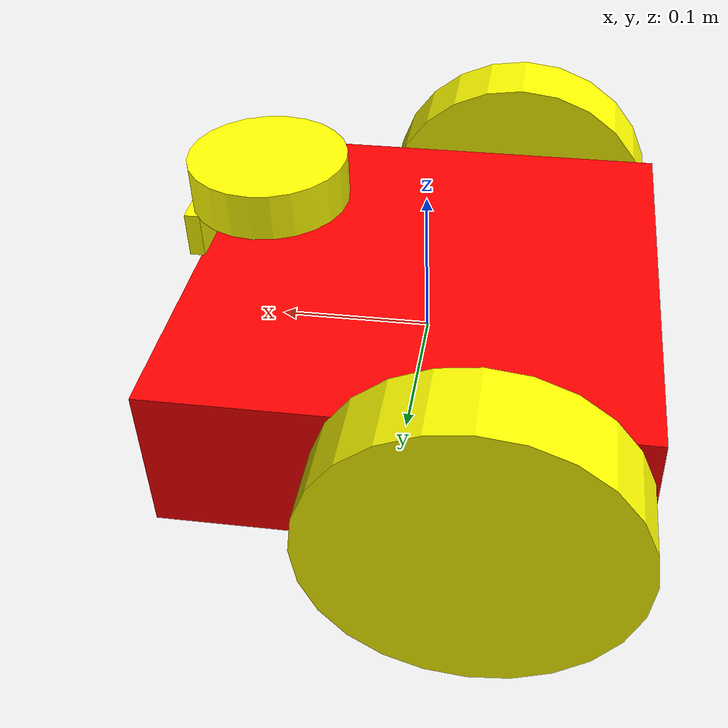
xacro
<?xml version="1.0"?>
<robot name="my_bot" xmlns:xacro="http://www.ros.org/wiki/xacro">

    <xacro:include filename="inertia.urdf.xacro"/>
    <xacro:include filename="gazebo.xacro"/>

    <link name="base_link">
    </link>

    <joint name="chassis_joint" type="fixed">
        <origin xyz="0.0 0.0 0.0" rpy="0.0 0.0 0.0"/>
        <parent link="base_link"/>
        <child link="chassis"/>
    </joint>

    <link name="chassis">
        <xacro:inertial_box mass="0.5" x="0.3" y="0.3" z="0.1">
            <origin xyz="0.0 0 0.0" rpy="0 0 0"/>
        </xacro:inertial_box>

        <visual name="">
            <origin xyz="0.0 0.0 0.0" rpy="0.0 0.0 0.0"/>
            <geometry>
                <box size="0.3 0.3 0.1"/>
            </geometry>
            <material name="">
                <color rgba="1.0 0.0 0.0 1.0"/>
            </material>
        </visual>
        <collision>
           <origin xyz="0.0 0.0 0.0" rpy="0.0 0.0 0.0"/>
            <geometry>
                <box size="0.3 0.3 0.1"/>
            </geometry>
        </collision>
    </link>

    <joint name="left_wheel_joint" type="continuous">
        <origin xyz="-0.05 0.18 0.0" rpy="-1.57 0.0 0.0"/>
        <parent link="chassis"/>
        <child link="left_wheel"/>
        <axis xyz="0.0 0.0 1.0"/>
    </joint>

    <link name="left_wheel">
        <xacro:inertial_cylinder mass="0.1" length="0.05" radius="0.1">
            <origin xyz="0.0 0 0.0" rpy="0 0 0"/>
        </xacro:inertial_cylinder>
        <visual name="">
            <origin xyz="0.0 0.0 0.0" rpy="0 0.0 0.0"/>
            <geometry>
                <cylinder radius="0.1" length="0.05"/>
            </geometry>
            <material name="">
                <color rgba="1.0 1.0 0.0 1.0"/>
            </material>
        </visual>
        <collision>
           <origin xyz="0.0 0.0 0.0" rpy="0 0.0 0.0"/>
            <geometry>
                <cylinder radius="0.1" length="0.05"/>
            </geometry>
        </collision>
    </link>

    <joint name="right_wheel_joint" type="continuous">
        <origin xyz="-0.05 -0.18 0.0" rpy="1.57 0.0 0.0"/>
        <parent link="chassis"/>
        <child link="right_wheel"/>
        <axis xyz="0.0 0.0 -1.0"/>
    </joint>

    <link name="right_wheel">
        <xacro:inertial_cylinder mass="0.1" length="0.05" radius="0.1">
            <origin xyz="0.0 0 0.0" rpy="0 0 0"/>
        </xacro:inertial_cylinder>
        <visual name="">
            <origin xyz="0.0 0.0 0.0" rpy="0 0.0 0.0"/>
            <geometry>
                <cylinder radius="0.1" length="0.05"/>
            </geometry>
            <material name="">
                <color rgba="1.0 1.0 0.0 1.0"/>
            </material>
        </visual>
        <collision>
            <origin xyz="0.0 0.0 0.0" rpy="0 0.0 0.0"/>
            <geometry>
                <cylinder radius="0.1" length="0.05"/>
            </geometry>
        </collision>
    </link>

    <joint name="castor_joint" type="fixed">
        <origin xyz="0.1 0.0 -0.05" rpy="0.0 0.0 0.0"/>
        <parent link="chassis"/>
        <child link="castor"/>
    </joint>

    <link name="castor">
        <xacro:inertial_sphere mass="0.1" radius="0.05">
            <origin xyz="0.0 0 0.0" rpy="0 0 0"/>
        </xacro:inertial_sphere>
        <visual name="">
            <origin xyz="0.0 0.0 0.0" rpy="0.0 0.0 0.0"/>
            <geometry>
                <sphere radius="0.05"/>
            </geometry>
            <material name="">
                <color rgba="1.0 1.0 0.0 1.0"/>
                <texture filename=""/>
            </material>
        </visual>
        <collision>
             <origin xyz="0.0 0.0 0.0" rpy="0.0 0.0 0.0"/>
            <geometry>
                <sphere radius="0.05"/>
            </geometry>
        </collision>
    </link>

    <joint name="laser_link" type="fixed">
        <origin xyz="0.1 0.0 0.11" rpy="0.0 0.0 0.0"/>
        <parent link="chassis"/>
        <child link="laser"/>
    </joint>

    <link name="laser">
        <xacro:inertial_cylinder mass="0.1" length="0.03" radius="0.05">
            <origin xyz="0.0 0 0.0" rpy="0 0 0"/>
        </xacro:inertial_cylinder>
        <visual name="">
            <origin xyz="0.0 0.0 0.0" rpy="0.0 0.0 0.0"/>
            <geometry>
                <cylinder radius="0.05" length="0.03"/>
            </geometry>
                <color rgba="1.0 0.0 0.0 0.0"/>
            <material name="">
                <color rgba="1.0 1.0 0.0 1.0"/>
                <texture filename=""/>
            </material>
        </visual>
        <collision>
            <origin xyz="0.0 0.0 0.0" rpy="0.0 0.0 0.0"/>
            <geometry>
                <box size="0.1 0.1 0.03"/>
            </geometry>
        </collision>
    </link>

    <joint name="camera_joint" type="fixed">
        <origin xyz="0.15 0.0 0.07" rpy="0.0 0.0 0.0"/>
        <parent link="chassis"/>
        <child link="camera"/>
    </joint>

    <link name="camera">
        <xacro:inertial_box mass="0.05" x="0.01" y="0.03" z="0.03">
            <origin xyz="0.0 0 0.0" rpy="0 0 0"/>
        </xacro:inertial_box>
        <visual name="">
            <origin xyz="0.0 0.0 0.0" rpy="0.0 0.0 0.0"/>
            <geometry>
                <box size="0.01 0.03 0.03"/>
            </geometry>
            <material name="">
                <color rgba="1.0 1.0 0.0 1.0"/>
                <texture filename=""/>
            </material>
        </visual>
        <collision>
            <origin xyz="0.0 0.0 0.0" rpy="0.0 0.0 0.0"/>
            <geometry>
                <box size="0.01 0.03 0.03"/>
            </geometry>
        </collision>
    </link>

</robot>
